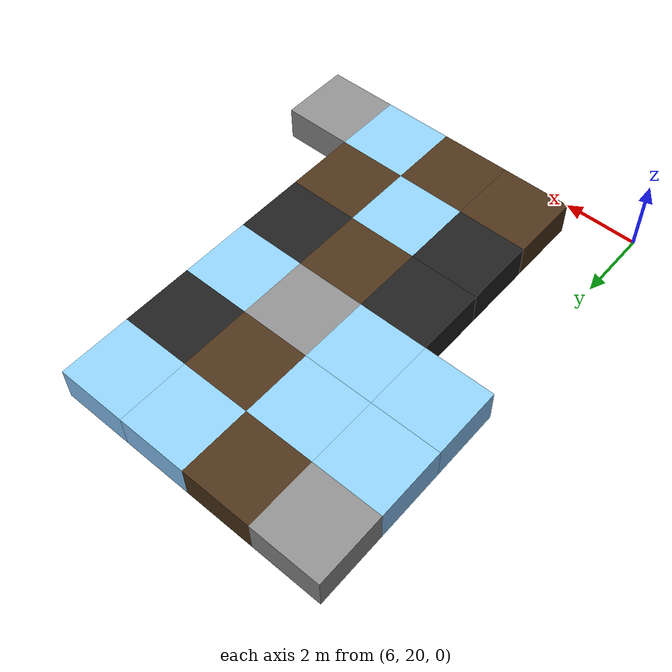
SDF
<sdf version="1.5">
 <world name="squares_example">
  <model name="tile_20_26">
   <static>true</static>
   <pose>9.000 21.000 -0.500 0 0 0</pose>
   <link name="link">
    <collision name="col">
     <geometry><box><size>2.0 2.0 1.0</size></box></geometry>
     <surface>
      <friction>
       <ode><mu>0.6</mu><mu2>0.4</mu2><fdir1>1 0 0</fdir1><slip1>0.08</slip1><slip2>0.08</slip2></ode>
       <torsional>
        <coefficient>0.03</coefficient>
        <use_patch_radius>false</use_patch_radius>
        <surface_radius>0.12</surface_radius>
        <ode><slip>0.0</slip></ode>
       </torsional>
      </friction>
      <bounce><restitution_coefficient>0.0</restitution_coefficient><threshold>0.1</threshold></bounce>
      <contact>
       <ode><kp>1000000.0</kp><kd>10000.0</kd><max_vel>0.01</max_vel><min_depth>0.0</min_depth></ode>
      </contact>
     </surface>
    </collision>
    <visual name="visual">
     <geometry><box><size>2.0 2.0 1.0</size></box></geometry>
     <material>
      <diffuse>0.30 0.20 0.10 1</diffuse>
      <ambient>0 0 0 0</ambient>
      <specular>0 0 0 1</specular>
      <emissive>0 0 0 1</emissive>
     </material>
    </visual>
   </link>
  </model>
  <model name="tile_21_26">
   <static>true</static>
   <pose>11.000 21.000 -0.500 0 0 0</pose>
   <link name="link">
    <collision name="col">
     <geometry><box><size>2.0 2.0 1.0</size></box></geometry>
     <surface>
      <friction>
       <ode><mu>0.6</mu><mu2>0.4</mu2><fdir1>1 0 0</fdir1><slip1>0.08</slip1><slip2>0.08</slip2></ode>
       <torsional>
        <coefficient>0.03</coefficient>
        <use_patch_radius>false</use_patch_radius>
        <surface_radius>0.12</surface_radius>
        <ode><slip>0.0</slip></ode>
       </torsional>
      </friction>
      <bounce><restitution_coefficient>0.0</restitution_coefficient><threshold>0.1</threshold></bounce>
      <contact>
       <ode><kp>1000000.0</kp><kd>10000.0</kd><max_vel>0.01</max_vel><min_depth>0.0</min_depth></ode>
      </contact>
     </surface>
    </collision>
    <visual name="visual">
     <geometry><box><size>2.0 2.0 1.0</size></box></geometry>
     <material>
      <diffuse>0.30 0.20 0.10 1</diffuse>
      <ambient>0 0 0 0</ambient>
      <specular>0 0 0 1</specular>
      <emissive>0 0 0 1</emissive>
     </material>
    </visual>
   </link>
  </model>
  <model name="tile_22_26">
   <static>true</static>
   <pose>13.000 21.000 -0.500 0 0 0</pose>
   <link name="link">
    <collision name="col">
     <geometry><box><size>2.0 2.0 1.0</size></box></geometry>
     <surface>
      <friction>
       <ode><mu>0.03</mu><mu2>0.02</mu2><fdir1>1 0 0</fdir1><slip1>0.03</slip1><slip2>0.03</slip2></ode>
       <torsional>
        <coefficient>0.005</coefficient>
        <use_patch_radius>false</use_patch_radius>
        <surface_radius>0.12</surface_radius>
        <ode><slip>0.01</slip></ode>
       </torsional>
      </friction>
      <bounce><restitution_coefficient>0.0</restitution_coefficient><threshold>0.1</threshold></bounce>
      <contact>
       <ode><kp>10000000.0</kp><kd>1000.0</kd><max_vel>0.01</max_vel><min_depth>0.0</min_depth></ode>
      </contact>
     </surface>
    </collision>
    <visual name="visual">
     <geometry><box><size>2.0 2.0 1.0</size></box></geometry>
     <material>
      <diffuse>0.55 0.80 1.00 1</diffuse>
      <ambient>0 0 0 0</ambient>
      <specular>0 0 0 1</specular>
      <emissive>0 0 0 1</emissive>
     </material>
    </visual>
   </link>
  </model>
  <model name="tile_23_26">
   <static>true</static>
   <pose>15.000 21.000 -0.500 0 0 0</pose>
   <link name="link">
    <collision name="col">
     <geometry><box><size>2.0 2.0 1.0</size></box></geometry>
     <surface>
      <friction>
       <ode><mu>0.8</mu><mu2>0.3</mu2><fdir1>1 0 0</fdir1><slip1>0.0</slip1><slip2>0.0</slip2></ode>
       <torsional>
        <coefficient>0.03</coefficient>
        <use_patch_radius>false</use_patch_radius>
        <surface_radius>0.12</surface_radius>
        <ode><slip>0.0</slip></ode>
       </torsional>
      </friction>
      <bounce><restitution_coefficient>0.0</restitution_coefficient><threshold>0.1</threshold></bounce>
      <contact>
       <ode><kp>10000000000.0</kp><kd>10000000.0</kd><max_vel>0.01</max_vel><min_depth>0.0</min_depth></ode>
      </contact>
     </surface>
    </collision>
    <visual name="visual">
     <geometry><box><size>2.0 2.0 1.0</size></box></geometry>
     <material>
      <diffuse>0.55 0.55 0.55 1</diffuse>
      <ambient>0 0 0 0</ambient>
      <specular>0 0 0 1</specular>
      <emissive>0 0 0 1</emissive>
     </material>
    </visual>
   </link>
  </model>
  <model name="tile_20_27">
   <static>true</static>
   <pose>9.000 23.000 -0.500 0 0 0</pose>
   <link name="link">
    <collision name="col">
     <geometry><box><size>2.0 2.0 1.0</size></box></geometry>
     <surface>
      <friction>
       <ode><mu>0.4</mu><mu2>0.15</mu2><fdir1>1 0 0</fdir1><slip1>0.0</slip1><slip2>0.0</slip2></ode>
       <torsional>
        <coefficient>0.03</coefficient>
        <use_patch_radius>false</use_patch_radius>
        <surface_radius>0.12</surface_radius>
        <ode><slip>0.0</slip></ode>
       </torsional>
      </friction>
      <bounce><restitution_coefficient>0.0</restitution_coefficient><threshold>0.1</threshold></bounce>
      <contact>
       <ode><kp>1000000000.0</kp><kd>1000000.0</kd><max_vel>0.01</max_vel><min_depth>0.0</min_depth></ode>
      </contact>
     </surface>
    </collision>
    <visual name="visual">
     <geometry><box><size>2.0 2.0 1.0</size></box></geometry>
     <material>
      <diffuse>0.12 0.12 0.12 1</diffuse>
      <ambient>0 0 0 0</ambient>
      <specular>0 0 0 1</specular>
      <emissive>0 0 0 1</emissive>
     </material>
    </visual>
   </link>
  </model>
  <model name="tile_21_27">
   <static>true</static>
   <pose>11.000 23.000 -0.500 0 0 0</pose>
   <link name="link">
    <collision name="col">
     <geometry><box><size>2.0 2.0 1.0</size></box></geometry>
     <surface>
      <friction>
       <ode><mu>0.03</mu><mu2>0.02</mu2><fdir1>1 0 0</fdir1><slip1>0.03</slip1><slip2>0.03</slip2></ode>
       <torsional>
        <coefficient>0.005</coefficient>
        <use_patch_radius>false</use_patch_radius>
        <surface_radius>0.12</surface_radius>
        <ode><slip>0.01</slip></ode>
       </torsional>
      </friction>
      <bounce><restitution_coefficient>0.0</restitution_coefficient><threshold>0.1</threshold></bounce>
      <contact>
       <ode><kp>10000000.0</kp><kd>1000.0</kd><max_vel>0.01</max_vel><min_depth>0.0</min_depth></ode>
      </contact>
     </surface>
    </collision>
    <visual name="visual">
     <geometry><box><size>2.0 2.0 1.0</size></box></geometry>
     <material>
      <diffuse>0.55 0.80 1.00 1</diffuse>
      <ambient>0 0 0 0</ambient>
      <specular>0 0 0 1</specular>
      <emissive>0 0 0 1</emissive>
     </material>
    </visual>
   </link>
  </model>
  <model name="tile_22_27">
   <static>true</static>
   <pose>13.000 23.000 -0.500 0 0 0</pose>
   <link name="link">
    <collision name="col">
     <geometry><box><size>2.0 2.0 1.0</size></box></geometry>
     <surface>
      <friction>
       <ode><mu>0.6</mu><mu2>0.4</mu2><fdir1>1 0 0</fdir1><slip1>0.08</slip1><slip2>0.08</slip2></ode>
       <torsional>
        <coefficient>0.03</coefficient>
        <use_patch_radius>false</use_patch_radius>
        <surface_radius>0.12</surface_radius>
        <ode><slip>0.0</slip></ode>
       </torsional>
      </friction>
      <bounce><restitution_coefficient>0.0</restitution_coefficient><threshold>0.1</threshold></bounce>
      <contact>
       <ode><kp>1000000.0</kp><kd>10000.0</kd><max_vel>0.01</max_vel><min_depth>0.0</min_depth></ode>
      </contact>
     </surface>
    </collision>
    <visual name="visual">
     <geometry><box><size>2.0 2.0 1.0</size></box></geometry>
     <material>
      <diffuse>0.30 0.20 0.10 1</diffuse>
      <ambient>0 0 0 0</ambient>
      <specular>0 0 0 1</specular>
      <emissive>0 0 0 1</emissive>
     </material>
    </visual>
   </link>
  </model>
  <model name="tile_20_28">
   <static>true</static>
   <pose>9.000 25.000 -0.500 0 0 0</pose>
   <link name="link">
    <collision name="col">
     <geometry><box><size>2.0 2.0 1.0</size></box></geometry>
     <surface>
      <friction>
       <ode><mu>0.4</mu><mu2>0.15</mu2><fdir1>1 0 0</fdir1><slip1>0.0</slip1><slip2>0.0</slip2></ode>
       <torsional>
        <coefficient>0.03</coefficient>
        <use_patch_radius>false</use_patch_radius>
        <surface_radius>0.12</surface_radius>
        <ode><slip>0.0</slip></ode>
       </torsional>
      </friction>
      <bounce><restitution_coefficient>0.0</restitution_coefficient><threshold>0.1</threshold></bounce>
      <contact>
       <ode><kp>1000000000.0</kp><kd>1000000.0</kd><max_vel>0.01</max_vel><min_depth>0.0</min_depth></ode>
      </contact>
     </surface>
    </collision>
    <visual name="visual">
     <geometry><box><size>2.0 2.0 1.0</size></box></geometry>
     <material>
      <diffuse>0.12 0.12 0.12 1</diffuse>
      <ambient>0 0 0 0</ambient>
      <specular>0 0 0 1</specular>
      <emissive>0 0 0 1</emissive>
     </material>
    </visual>
   </link>
  </model>
  <model name="tile_21_28">
   <static>true</static>
   <pose>11.000 25.000 -0.500 0 0 0</pose>
   <link name="link">
    <collision name="col">
     <geometry><box><size>2.0 2.0 1.0</size></box></geometry>
     <surface>
      <friction>
       <ode><mu>0.6</mu><mu2>0.4</mu2><fdir1>1 0 0</fdir1><slip1>0.08</slip1><slip2>0.08</slip2></ode>
       <torsional>
        <coefficient>0.03</coefficient>
        <use_patch_radius>false</use_patch_radius>
        <surface_radius>0.12</surface_radius>
        <ode><slip>0.0</slip></ode>
       </torsional>
      </friction>
      <bounce><restitution_coefficient>0.0</restitution_coefficient><threshold>0.1</threshold></bounce>
      <contact>
       <ode><kp>1000000.0</kp><kd>10000.0</kd><max_vel>0.01</max_vel><min_depth>0.0</min_depth></ode>
      </contact>
     </surface>
    </collision>
    <visual name="visual">
     <geometry><box><size>2.0 2.0 1.0</size></box></geometry>
     <material>
      <diffuse>0.30 0.20 0.10 1</diffuse>
      <ambient>0 0 0 0</ambient>
      <specular>0 0 0 1</specular>
      <emissive>0 0 0 1</emissive>
     </material>
    </visual>
   </link>
  </model>
  <model name="tile_22_28">
   <static>true</static>
   <pose>13.000 25.000 -0.500 0 0 0</pose>
   <link name="link">
    <collision name="col">
     <geometry><box><size>2.0 2.0 1.0</size></box></geometry>
     <surface>
      <friction>
       <ode><mu>0.4</mu><mu2>0.15</mu2><fdir1>1 0 0</fdir1><slip1>0.0</slip1><slip2>0.0</slip2></ode>
       <torsional>
        <coefficient>0.03</coefficient>
        <use_patch_radius>false</use_patch_radius>
        <surface_radius>0.12</surface_radius>
        <ode><slip>0.0</slip></ode>
       </torsional>
      </friction>
      <bounce><restitution_coefficient>0.0</restitution_coefficient><threshold>0.1</threshold></bounce>
      <contact>
       <ode><kp>1000000000.0</kp><kd>1000000.0</kd><max_vel>0.01</max_vel><min_depth>0.0</min_depth></ode>
      </contact>
     </surface>
    </collision>
    <visual name="visual">
     <geometry><box><size>2.0 2.0 1.0</size></box></geometry>
     <material>
      <diffuse>0.12 0.12 0.12 1</diffuse>
      <ambient>0 0 0 0</ambient>
      <specular>0 0 0 1</specular>
      <emissive>0 0 0 1</emissive>
     </material>
    </visual>
   </link>
  </model>
  <model name="tile_19_29">
   <static>true</static>
   <pose>7.000 27.000 -0.500 0 0 0</pose>
   <link name="link">
    <collision name="col">
     <geometry><box><size>2.0 2.0 1.0</size></box></geometry>
     <surface>
      <friction>
       <ode><mu>0.03</mu><mu2>0.02</mu2><fdir1>1 0 0</fdir1><slip1>0.03</slip1><slip2>0.03</slip2></ode>
       <torsional>
        <coefficient>0.005</coefficient>
        <use_patch_radius>false</use_patch_radius>
        <surface_radius>0.12</surface_radius>
        <ode><slip>0.01</slip></ode>
       </torsional>
      </friction>
      <bounce><restitution_coefficient>0.0</restitution_coefficient><threshold>0.1</threshold></bounce>
      <contact>
       <ode><kp>10000000.0</kp><kd>1000.0</kd><max_vel>0.01</max_vel><min_depth>0.0</min_depth></ode>
      </contact>
     </surface>
    </collision>
    <visual name="visual">
     <geometry><box><size>2.0 2.0 1.0</size></box></geometry>
     <material>
      <diffuse>0.55 0.80 1.00 1</diffuse>
      <ambient>0 0 0 0</ambient>
      <specular>0 0 0 1</specular>
      <emissive>0 0 0 1</emissive>
     </material>
    </visual>
   </link>
  </model>
  <model name="tile_20_29">
   <static>true</static>
   <pose>9.000 27.000 -0.500 0 0 0</pose>
   <link name="link">
    <collision name="col">
     <geometry><box><size>2.0 2.0 1.0</size></box></geometry>
     <surface>
      <friction>
       <ode><mu>0.03</mu><mu2>0.02</mu2><fdir1>1 0 0</fdir1><slip1>0.03</slip1><slip2>0.03</slip2></ode>
       <torsional>
        <coefficient>0.005</coefficient>
        <use_patch_radius>false</use_patch_radius>
        <surface_radius>0.12</surface_radius>
        <ode><slip>0.01</slip></ode>
       </torsional>
      </friction>
      <bounce><restitution_coefficient>0.0</restitution_coefficient><threshold>0.1</threshold></bounce>
      <contact>
       <ode><kp>10000000.0</kp><kd>1000.0</kd><max_vel>0.01</max_vel><min_depth>0.0</min_depth></ode>
      </contact>
     </surface>
    </collision>
    <visual name="visual">
     <geometry><box><size>2.0 2.0 1.0</size></box></geometry>
     <material>
      <diffuse>0.55 0.80 1.00 1</diffuse>
      <ambient>0 0 0 0</ambient>
      <specular>0 0 0 1</specular>
      <emissive>0 0 0 1</emissive>
     </material>
    </visual>
   </link>
  </model>
  <model name="tile_21_29">
   <static>true</static>
   <pose>11.000 27.000 -0.500 0 0 0</pose>
   <link name="link">
    <collision name="col">
     <geometry><box><size>2.0 2.0 1.0</size></box></geometry>
     <surface>
      <friction>
       <ode><mu>0.8</mu><mu2>0.3</mu2><fdir1>1 0 0</fdir1><slip1>0.0</slip1><slip2>0.0</slip2></ode>
       <torsional>
        <coefficient>0.03</coefficient>
        <use_patch_radius>false</use_patch_radius>
        <surface_radius>0.12</surface_radius>
        <ode><slip>0.0</slip></ode>
       </torsional>
      </friction>
      <bounce><restitution_coefficient>0.0</restitution_coefficient><threshold>0.1</threshold></bounce>
      <contact>
       <ode><kp>10000000000.0</kp><kd>10000000.0</kd><max_vel>0.01</max_vel><min_depth>0.0</min_depth></ode>
      </contact>
     </surface>
    </collision>
    <visual name="visual">
     <geometry><box><size>2.0 2.0 1.0</size></box></geometry>
     <material>
      <diffuse>0.55 0.55 0.55 1</diffuse>
      <ambient>0 0 0 0</ambient>
      <specular>0 0 0 1</specular>
      <emissive>0 0 0 1</emissive>
     </material>
    </visual>
   </link>
  </model>
  <model name="tile_22_29">
   <static>true</static>
   <pose>13.000 27.000 -0.500 0 0 0</pose>
   <link name="link">
    <collision name="col">
     <geometry><box><size>2.0 2.0 1.0</size></box></geometry>
     <surface>
      <friction>
       <ode><mu>0.03</mu><mu2>0.02</mu2><fdir1>1 0 0</fdir1><slip1>0.03</slip1><slip2>0.03</slip2></ode>
       <torsional>
        <coefficient>0.005</coefficient>
        <use_patch_radius>false</use_patch_radius>
        <surface_radius>0.12</surface_radius>
        <ode><slip>0.01</slip></ode>
       </torsional>
      </friction>
      <bounce><restitution_coefficient>0.0</restitution_coefficient><threshold>0.1</threshold></bounce>
      <contact>
       <ode><kp>10000000.0</kp><kd>1000.0</kd><max_vel>0.01</max_vel><min_depth>0.0</min_depth></ode>
      </contact>
     </surface>
    </collision>
    <visual name="visual">
     <geometry><box><size>2.0 2.0 1.0</size></box></geometry>
     <material>
      <diffuse>0.55 0.80 1.00 1</diffuse>
      <ambient>0 0 0 0</ambient>
      <specular>0 0 0 1</specular>
      <emissive>0 0 0 1</emissive>
     </material>
    </visual>
   </link>
  </model>
  <model name="tile_19_30">
   <static>true</static>
   <pose>7.000 29.000 -0.500 0 0 0</pose>
   <link name="link">
    <collision name="col">
     <geometry><box><size>2.0 2.0 1.0</size></box></geometry>
     <surface>
      <friction>
       <ode><mu>0.03</mu><mu2>0.02</mu2><fdir1>1 0 0</fdir1><slip1>0.03</slip1><slip2>0.03</slip2></ode>
       <torsional>
        <coefficient>0.005</coefficient>
        <use_patch_radius>false</use_patch_radius>
        <surface_radius>0.12</surface_radius>
        <ode><slip>0.01</slip></ode>
       </torsional>
      </friction>
      <bounce><restitution_coefficient>0.0</restitution_coefficient><threshold>0.1</threshold></bounce>
      <contact>
       <ode><kp>10000000.0</kp><kd>1000.0</kd><max_vel>0.01</max_vel><min_depth>0.0</min_depth></ode>
      </contact>
     </surface>
    </collision>
    <visual name="visual">
     <geometry><box><size>2.0 2.0 1.0</size></box></geometry>
     <material>
      <diffuse>0.55 0.80 1.00 1</diffuse>
      <ambient>0 0 0 0</ambient>
      <specular>0 0 0 1</specular>
      <emissive>0 0 0 1</emissive>
     </material>
    </visual>
   </link>
  </model>
  <model name="tile_20_30">
   <static>true</static>
   <pose>9.000 29.000 -0.500 0 0 0</pose>
   <link name="link">
    <collision name="col">
     <geometry><box><size>2.0 2.0 1.0</size></box></geometry>
     <surface>
      <friction>
       <ode><mu>0.03</mu><mu2>0.02</mu2><fdir1>1 0 0</fdir1><slip1>0.03</slip1><slip2>0.03</slip2></ode>
       <torsional>
        <coefficient>0.005</coefficient>
        <use_patch_radius>false</use_patch_radius>
        <surface_radius>0.12</surface_radius>
        <ode><slip>0.01</slip></ode>
       </torsional>
      </friction>
      <bounce><restitution_coefficient>0.0</restitution_coefficient><threshold>0.1</threshold></bounce>
      <contact>
       <ode><kp>10000000.0</kp><kd>1000.0</kd><max_vel>0.01</max_vel><min_depth>0.0</min_depth></ode>
      </contact>
     </surface>
    </collision>
    <visual name="visual">
     <geometry><box><size>2.0 2.0 1.0</size></box></geometry>
     <material>
      <diffuse>0.55 0.80 1.00 1</diffuse>
      <ambient>0 0 0 0</ambient>
      <specular>0 0 0 1</specular>
      <emissive>0 0 0 1</emissive>
     </material>
    </visual>
   </link>
  </model>
  <model name="tile_21_30">
   <static>true</static>
   <pose>11.000 29.000 -0.500 0 0 0</pose>
   <link name="link">
    <collision name="col">
     <geometry><box><size>2.0 2.0 1.0</size></box></geometry>
     <surface>
      <friction>
       <ode><mu>0.6</mu><mu2>0.4</mu2><fdir1>1 0 0</fdir1><slip1>0.08</slip1><slip2>0.08</slip2></ode>
       <torsional>
        <coefficient>0.03</coefficient>
        <use_patch_radius>false</use_patch_radius>
        <surface_radius>0.12</surface_radius>
        <ode><slip>0.0</slip></ode>
       </torsional>
      </friction>
      <bounce><restitution_coefficient>0.0</restitution_coefficient><threshold>0.1</threshold></bounce>
      <contact>
       <ode><kp>1000000.0</kp><kd>10000.0</kd><max_vel>0.01</max_vel><min_depth>0.0</min_depth></ode>
      </contact>
     </surface>
    </collision>
    <visual name="visual">
     <geometry><box><size>2.0 2.0 1.0</size></box></geometry>
     <material>
      <diffuse>0.30 0.20 0.10 1</diffuse>
      <ambient>0 0 0 0</ambient>
      <specular>0 0 0 1</specular>
      <emissive>0 0 0 1</emissive>
     </material>
    </visual>
   </link>
  </model>
  <model name="tile_22_30">
   <static>true</static>
   <pose>13.000 29.000 -0.500 0 0 0</pose>
   <link name="link">
    <collision name="col">
     <geometry><box><size>2.0 2.0 1.0</size></box></geometry>
     <surface>
      <friction>
       <ode><mu>0.4</mu><mu2>0.15</mu2><fdir1>1 0 0</fdir1><slip1>0.0</slip1><slip2>0.0</slip2></ode>
       <torsional>
        <coefficient>0.03</coefficient>
        <use_patch_radius>false</use_patch_radius>
        <surface_radius>0.12</surface_radius>
        <ode><slip>0.0</slip></ode>
       </torsional>
      </friction>
      <bounce><restitution_coefficient>0.0</restitution_coefficient><threshold>0.1</threshold></bounce>
      <contact>
       <ode><kp>1000000000.0</kp><kd>1000000.0</kd><max_vel>0.01</max_vel><min_depth>0.0</min_depth></ode>
      </contact>
     </surface>
    </collision>
    <visual name="visual">
     <geometry><box><size>2.0 2.0 1.0</size></box></geometry>
     <material>
      <diffuse>0.12 0.12 0.12 1</diffuse>
      <ambient>0 0 0 0</ambient>
      <specular>0 0 0 1</specular>
      <emissive>0 0 0 1</emissive>
     </material>
    </visual>
   </link>
  </model>
  <model name="tile_19_31">
   <static>true</static>
   <pose>7.000 31.000 -0.500 0 0 0</pose>
   <link name="link">
    <collision name="col">
     <geometry><box><size>2.0 2.0 1.0</size></box></geometry>
     <surface>
      <friction>
       <ode><mu>0.8</mu><mu2>0.3</mu2><fdir1>1 0 0</fdir1><slip1>0.0</slip1><slip2>0.0</slip2></ode>
       <torsional>
        <coefficient>0.03</coefficient>
        <use_patch_radius>false</use_patch_radius>
        <surface_radius>0.12</surface_radius>
        <ode><slip>0.0</slip></ode>
       </torsional>
      </friction>
      <bounce><restitution_coefficient>0.0</restitution_coefficient><threshold>0.1</threshold></bounce>
      <contact>
       <ode><kp>10000000000.0</kp><kd>10000000.0</kd><max_vel>0.01</max_vel><min_depth>0.0</min_depth></ode>
      </contact>
     </surface>
    </collision>
    <visual name="visual">
     <geometry><box><size>2.0 2.0 1.0</size></box></geometry>
     <material>
      <diffuse>0.55 0.55 0.55 1</diffuse>
      <ambient>0 0 0 0</ambient>
      <specular>0 0 0 1</specular>
      <emissive>0 0 0 1</emissive>
     </material>
    </visual>
   </link>
  </model>
  <model name="tile_20_31">
   <static>true</static>
   <pose>9.000 31.000 -0.500 0 0 0</pose>
   <link name="link">
    <collision name="col">
     <geometry><box><size>2.0 2.0 1.0</size></box></geometry>
     <surface>
      <friction>
       <ode><mu>0.6</mu><mu2>0.4</mu2><fdir1>1 0 0</fdir1><slip1>0.08</slip1><slip2>0.08</slip2></ode>
       <torsional>
        <coefficient>0.03</coefficient>
        <use_patch_radius>false</use_patch_radius>
        <surface_radius>0.12</surface_radius>
        <ode><slip>0.0</slip></ode>
       </torsional>
      </friction>
      <bounce><restitution_coefficient>0.0</restitution_coefficient><threshold>0.1</threshold></bounce>
      <contact>
       <ode><kp>1000000.0</kp><kd>10000.0</kd><max_vel>0.01</max_vel><min_depth>0.0</min_depth></ode>
      </contact>
     </surface>
    </collision>
    <visual name="visual">
     <geometry><box><size>2.0 2.0 1.0</size></box></geometry>
     <material>
      <diffuse>0.30 0.20 0.10 1</diffuse>
      <ambient>0 0 0 0</ambient>
      <specular>0 0 0 1</specular>
      <emissive>0 0 0 1</emissive>
     </material>
    </visual>
   </link>
  </model>
  <model name="tile_21_31">
   <static>true</static>
   <pose>11.000 31.000 -0.500 0 0 0</pose>
   <link name="link">
    <collision name="col">
     <geometry><box><size>2.0 2.0 1.0</size></box></geometry>
     <surface>
      <friction>
       <ode><mu>0.03</mu><mu2>0.02</mu2><fdir1>1 0 0</fdir1><slip1>0.03</slip1><slip2>0.03</slip2></ode>
       <torsional>
        <coefficient>0.005</coefficient>
        <use_patch_radius>false</use_patch_radius>
        <surface_radius>0.12</surface_radius>
        <ode><slip>0.01</slip></ode>
       </torsional>
      </friction>
      <bounce><restitution_coefficient>0.0</restitution_coefficient><threshold>0.1</threshold></bounce>
      <contact>
       <ode><kp>10000000.0</kp><kd>1000.0</kd><max_vel>0.01</max_vel><min_depth>0.0</min_depth></ode>
      </contact>
     </surface>
    </collision>
    <visual name="visual">
     <geometry><box><size>2.0 2.0 1.0</size></box></geometry>
     <material>
      <diffuse>0.55 0.80 1.00 1</diffuse>
      <ambient>0 0 0 0</ambient>
      <specular>0 0 0 1</specular>
      <emissive>0 0 0 1</emissive>
     </material>
    </visual>
   </link>
  </model>
  <model name="tile_22_31">
   <static>true</static>
   <pose>13.000 31.000 -0.500 0 0 0</pose>
   <link name="link">
    <collision name="col">
     <geometry><box><size>2.0 2.0 1.0</size></box></geometry>
     <surface>
      <friction>
       <ode><mu>0.03</mu><mu2>0.02</mu2><fdir1>1 0 0</fdir1><slip1>0.03</slip1><slip2>0.03</slip2></ode>
       <torsional>
        <coefficient>0.005</coefficient>
        <use_patch_radius>false</use_patch_radius>
        <surface_radius>0.12</surface_radius>
        <ode><slip>0.01</slip></ode>
       </torsional>
      </friction>
      <bounce><restitution_coefficient>0.0</restitution_coefficient><threshold>0.1</threshold></bounce>
      <contact>
       <ode><kp>10000000.0</kp><kd>1000.0</kd><max_vel>0.01</max_vel><min_depth>0.0</min_depth></ode>
      </contact>
     </surface>
    </collision>
    <visual name="visual">
     <geometry><box><size>2.0 2.0 1.0</size></box></geometry>
     <material>
      <diffuse>0.55 0.80 1.00 1</diffuse>
      <ambient>0 0 0 0</ambient>
      <specular>0 0 0 1</specular>
      <emissive>0 0 0 1</emissive>
     </material>
    </visual>
   </link>
  </model>
 </world>
</sdf>
